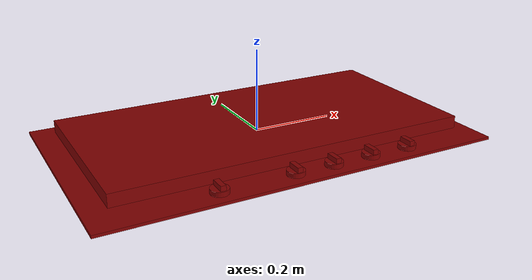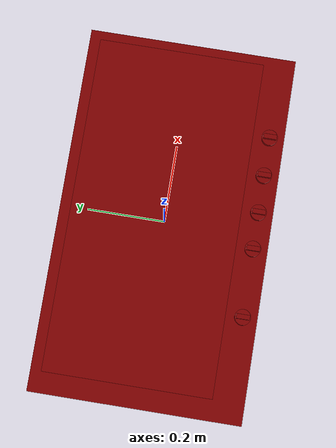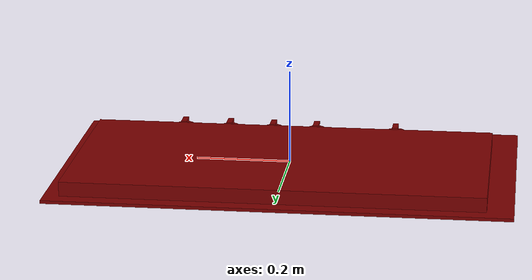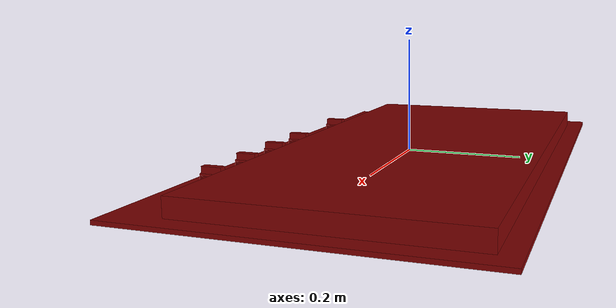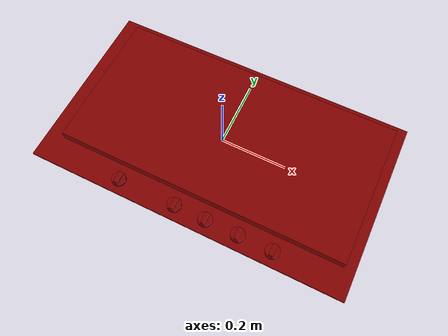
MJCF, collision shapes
<?xml version='1.0' encoding='UTF-8'?>
<mujoco model="model">
  <option timestep="0.002" gravity="0.0 0.0 -9.81"/>
  <compiler angle="radian"/>
  <asset>
    <mesh file="visuals/knob_front_center.obj" name="knob_front_center_vis"/>
    <mesh file="visuals/knob_front_right.obj" name="knob_front_right_vis"/>
    <mesh file="visuals/knob_left.obj" name="knob_left_vis"/>
    <mesh file="visuals/knob_rear_center.obj" name="knob_rear_center_vis"/>
    <mesh file="visuals/knob_rear_right.obj" name="knob_rear_right_vis"/>
    <mesh file="visuals/Body001.obj" name="Body001_vis"/>
    <mesh file="visuals/Body002.obj" name="Body002_vis"/>
    <texture file="visuals/T_BC001.png" name="Body001_material" type="2d"/>
    <material name="Body001_material" rgba="1 1 1 1.0" texture="Body001_material" shininess="0.4472135901451111" specular="1"/>
    <texture file="visuals/T_BC001.png" name="knob_front_center_material" type="2d"/>
    <material name="knob_front_center_material" rgba="1 1 1 1.0" texture="knob_front_center_material" shininess="0.4472135901451111" specular="0.3103448502657381"/>
    <texture file="visuals/T_BC001.png" name="knob_front_right_material" type="2d"/>
    <material name="knob_front_right_material" rgba="1 1 1 1.0" texture="knob_front_right_material" shininess="0.4472135901451111" specular="0.3103448502657381"/>
    <texture file="visuals/T_BC001.png" name="knob_left_material" type="2d"/>
    <material name="knob_left_material" rgba="1 1 1 1.0" texture="knob_left_material" shininess="0.4472135901451111" specular="0.3103448502657381"/>
    <texture file="visuals/T_BC001.png" name="knob_rear_center_material" type="2d"/>
    <material name="knob_rear_center_material" rgba="1 1 1 1.0" texture="knob_rear_center_material" shininess="0.4472135901451111" specular="0.3103448502657381"/>
    <texture file="visuals/T_BC001.png" name="knob_rear_right_material" type="2d"/>
    <material name="knob_rear_right_material" rgba="1 1 1 1.0" texture="knob_rear_right_material" shininess="0.4472135901451111" specular="0.3103448502657381"/>
    <texture file="visuals/T_BC001.png" name="Body002_material" type="2d"/>
    <material name="Body002_material" rgba="1 1 1 1.0" texture="Body002_material" shininess="0.4472135901451111" specular="5"/>
  </asset>
  <default>
    <default class="visual">
      <geom conaffinity="0" contype="0" group="1" type="mesh"/>
    </default>
    <default class="collision">
      <geom group="0" rgba="0.5 0 0 0.5"/>
    </default>
    <default class="spawn">
      <geom group="0" rgba="1 1 1 0.5" contype="0" conaffinity="0"/>
      <site group="0" rgba="1 1 1 0.5"/>
    </default>
    <default class="region">
      <geom group="1" conaffinity="0" contype="0" rgba="0 1 0 0"/>
    </default>
  </default>
  <worldbody>
    <body>
      <body name="object">
        <geom mesh="Body001_vis" type="mesh" solimp="0.998 0.998 0.001" solref="0.001 1" friction="0.95 0.3 0.1" class="visual" material="Body001_material"/>
        <geom class="collision" type="box" pos="-0.00000002 -0.00003104 -0.01530346" size="0.4847741425037384 0.2764391601085663 0.003441101172938943" quat="1.0 0.0 0.0 0.0"/>
        <body name="knob_front_center">
          <joint axis="0.0 0.0 1.0" pos="-0.03331222 -0.23762311 0.00038948" limited="true" name="knob_front_center_joint" range="0.0 3.6651914291880923" type="hinge" damping="0.2" armature="0.01" frictionloss="1"/>
          <geom mesh="knob_front_center_vis" type="mesh" solimp="0.998 0.998 0.001" solref="0.001 1" friction="0.95 0.3 0.1" class="visual" material="knob_front_center_material"/>
          <geom class="collision" type="box" pos="-0.03307920 -0.23734668 0.00675127" size="0.006201376672834158 0.017372779548168182 0.006048962939530611" quat="1.0 0.0 0.0 0.0" name="knob_front_center_main" friction="100 0.5 0.01"/>
          <geom class="collision" type="cylinder" pos="-0.03320501 -0.23705931 -0.00463671" size="0.020895088091492653 0.005719008855521679" quat="1.0 0.0 0.0 0.0" friction="100 0.5 0.01"/>
        </body>
        <body name="knob_front_right">
          <joint axis="0.0 0.0 1.0" pos="0.26491022 -0.23762311 0.00038948" limited="true" name="knob_front_right_joint" range="0.0 3.6651914291880923" type="hinge" damping="0.2" armature="0.01" frictionloss="1"/>
          <geom mesh="knob_front_right_vis" type="mesh" solimp="0.998 0.998 0.001" solref="0.001 1" friction="0.95 0.3 0.1" class="visual" material="knob_front_right_material"/>
          <geom class="collision" type="box" pos="0.26562256 -0.23712379 0.00675127" size="0.006201376672834158 0.01737280935049057 0.006048974115401506" quat="1.0 0.0 0.0 0.0" name="knob_front_right_main" friction="100 0.5 0.01"/>
          <geom class="collision" type="cylinder" pos="0.26504838 -0.23708098 -0.00463671" size="0.020895088091492653 0.005719008855521679" quat="1.0 0.0 0.0 0.0" friction="100 0.5 0.01"/>
        </body>
        <body name="knob_left">
          <joint axis="0.0 0.0 1.0" pos="-0.21195371 -0.23762311 0.00038948" limited="true" name="knob_left_joint" range="0.0 3.6651914291880923" type="hinge" damping="0.2" armature="0.01" frictionloss="1"/>
          <geom mesh="knob_left_vis" type="mesh" solimp="0.998 0.998 0.001" solref="0.001 1" friction="0.95 0.3 0.1" class="visual" material="knob_left_material"/>
          <geom class="collision" type="box" pos="-0.21127388 -0.23756248 0.00675127" size="0.006201376672834158 0.017372770234942436 0.006048959214240313" quat="1.0 0.0 0.0 0.0" name="knob_left_main" friction="100 0.5 0.01"/>
          <geom class="collision" type="cylinder" pos="-0.21189696 -0.23756856 -0.00463671" size="0.020895088091492653 0.005719008855521679" quat="1.0 0.0 0.0 0.0" friction="100 0.5 0.01"/>
        </body>
        <body name="knob_rear_center">
          <joint axis="0.0 0.0 1.0" pos="0.06316353 -0.23762311 0.00038948" limited="true" name="knob_rear_center_joint" range="0.0 3.6651914291880923" type="hinge" damping="0.2" armature="0.01" frictionloss="1"/>
          <geom mesh="knob_rear_center_vis" type="mesh" solimp="0.998 0.998 0.001" solref="0.001 1" friction="0.95 0.3 0.1" class="visual" material="knob_rear_center_material"/>
          <geom class="collision" type="box" pos="0.06400658 -0.23758143 0.00675127" size="0.006201376672834158 0.017372790724039078 0.0060489666648209095" quat="1.0 0.0 0.0 0.0" name="knob_rear_center_main" friction="100 0.5 0.01"/>
          <geom class="collision" type="cylinder" pos="0.06343241 -0.23729406 -0.00463671" size="0.020895088091492653 0.005719008855521679" quat="1.0 0.0 0.0 0.0" friction="100 0.5 0.01"/>
        </body>
        <body name="knob_rear_right">
          <joint axis="0.0 0.0 1.0" pos="0.16247734 -0.23762311 0.00038948" limited="true" name="knob_rear_right_joint" range="0.0 3.6651914291880923" type="hinge" damping="0.2" armature="0.01" frictionloss="1"/>
          <geom mesh="knob_rear_right_vis" type="mesh" solimp="0.998 0.998 0.001" solref="0.001 1" friction="0.95 0.3 0.1" class="visual" material="knob_rear_right_material"/>
          <geom class="collision" type="box" pos="0.16259673 -0.23716743 0.00675127" size="0.006201376672834158 0.017372800037264824 0.006048970390111208" quat="1.0 0.0 0.0 0.0" name="knob_rear_right_main" friction="100 0.5 0.01"/>
          <geom class="collision" type="cylinder" pos="0.16251168 -0.23696159 -0.00463671" size="0.020895088091492653 0.005719008855521679" quat="1.0 0.0 0.0 0.0" friction="100 0.5 0.01"/>
        </body>
        <body name="Body002">
          <geom mesh="Body002_vis" type="mesh" solimp="0.998 0.998 0.001" solref="0.001 1" friction="0.95 0.3 0.1" class="visual" material="Body002_material"/>
          <geom class="collision" type="box" pos="0.01159276 0.02657987 0.00344122" size="0.4405771791934967 0.21851758658885956 0.015303525142371655" quat="1.0 0.0 0.0 0.0"/>
        </body>
        <site type="cylinder" rgba="0.3 0.4 1 0.5" size="0.06843984872102737 0.004636476282030344" pos="-0.30876729 0.02629289 0.00502893" name="burner_on_left"/>
        <site type="cylinder" rgba="0.3 0.4 1 0.5" size="0.05414806306362152 0.004102786537259817" pos="0.33958092 0.13920633 0.00553956" name="burner_on_rear_right"/>
        <site type="cylinder" rgba="0.3 0.4 1 0.5" size="0.04100710526108742 0.003484246553853154" pos="0.33932394 -0.08491978 0.00602278" name="burner_on_front_right"/>
        <site type="cylinder" rgba="0.3 0.4 1 0.5" size="0.030098875984549522 0.0025119257625192404" pos="0.00304728 -0.08547288 0.00702842" name="burner_on_front_center"/>
        <site type="cylinder" rgba="0.5 0 0 0" size="0.030098875984549522 4.999996235710569e-05" pos="0.00304728 -0.08547288 0.01874475" name="burner_front_center_place_site"/>
        <site type="cylinder" rgba="0.5 0 0 0" size="0.04100710526108742 5.000002420274541e-05" pos="0.33932394 -0.08491978 0.01874475" name="burner_front_right_place_site"/>
        <site type="cylinder" rgba="0.5 0 0 0" size="0.06843984872102737 4.9999929615296423e-05" pos="-0.30876729 0.02629289 0.01874475" name="burner_left_place_site"/>
        <site type="cylinder" rgba="0.5 0 0 0" size="0.04111219197511673 4.999995508114807e-05" pos="0.00277722 0.13932741 0.01874475" name="burner_rear_center_place_site"/>
        <site type="cylinder" rgba="0.5 0 0 0" size="0.05414806306362152 5.000006785849109e-05" pos="0.33958092 0.13920633 0.01874475" name="burner_rear_right_place_site"/>
        <site type="cylinder" rgba="0.3 0.4 1 0.5" size="0.04111219197511673 0.004139019642025232" pos="0.00277722 0.13932741 0.00547092" name="burner_on_rear_center"/>
        <geom class="region" name="reg_main" type="box" pos="-9.999999994736442e-09 -3.0980000000013774e-05 -0.015303465" size="0.48577417 0.27743907 0.004441075"/>
      </body>
    </body>
  </worldbody>
  <actuator>
    <motor name="knob_front_center_joint_actuator" joint="knob_front_center_joint" gear="10"/>
    <motor name="knob_front_right_joint_actuator" joint="knob_front_right_joint" gear="10"/>
    <motor name="knob_left_joint_actuator" joint="knob_left_joint" gear="10"/>
    <motor name="knob_rear_center_joint_actuator" joint="knob_rear_center_joint" gear="10"/>
    <motor name="knob_rear_right_joint_actuator" joint="knob_rear_right_joint" gear="10"/>
  </actuator>
</mujoco>
